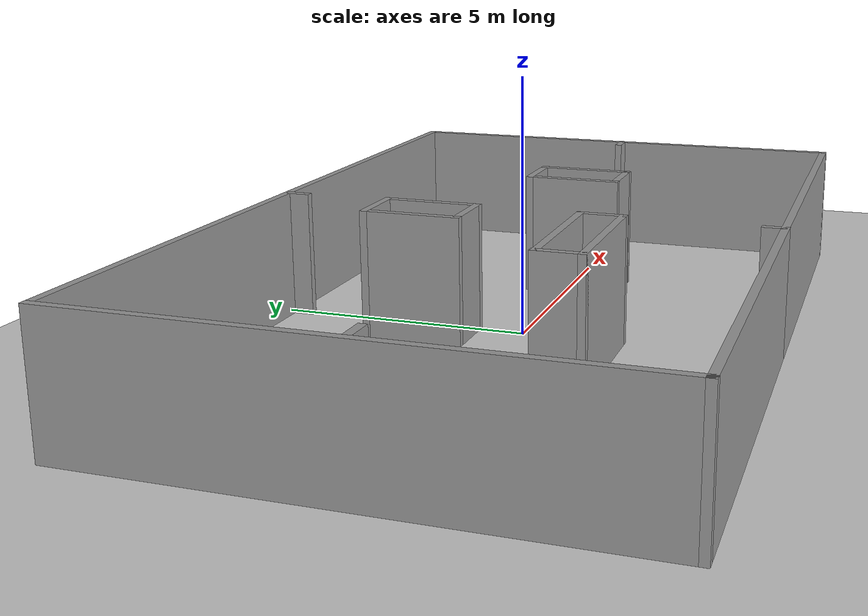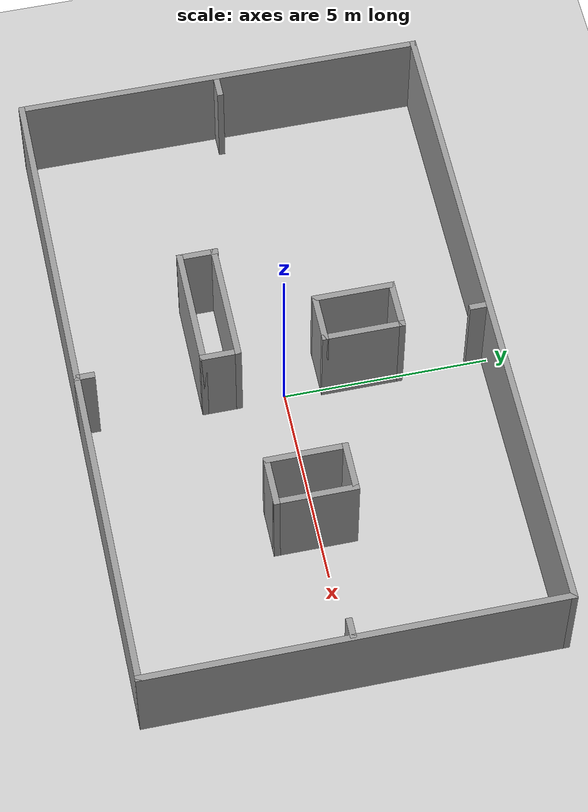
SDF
<sdf version="1.6">
 <world name="default">
  <light name="sun" type="directional">
   <pose>0 0 10 0 -0 0</pose>
   <diffuse>0.8 0.8 0.8 1</diffuse>
   <specular>0.2 0.2 0.2 1</specular>
   <attenuation>
    <range>1000</range>
    <constant>0.9</constant>
    <linear>0.01</linear>
    <quadratic>0.001</quadratic>
   </attenuation>
   <direction>-0.5 0.1 -0.9</direction>
  </light>
  <model name="ground_plane">
   <static>1</static>
   <link name="link">
    <collision name="collision">
     <geometry><plane><normal>0 0 1</normal><size>100 100</size></plane></geometry>
     <surface><friction><ode><mu>100</mu><mu2>50</mu2></ode></friction></surface>
    </collision>
    <visual name="visual">
     <cast_shadows>0</cast_shadows>
     <geometry><plane><normal>0 0 1</normal><size>100 100</size></plane></geometry>
     <material>
      <script><uri>file://media/materials/scripts/gazebo.material</uri><name>Gazebo/Grey</name></script>
     </material>
    </visual>
   </link>
  </model>
  <gravity>0 0 -9.8</gravity>
  <magnetic_field>6e-06 2.3e-05 -4.2e-05</magnetic_field>
  <atmosphere type="adiabatic"/>
  <physics name="default_physics" default="0" type="ode">
   <max_step_size>0.001</max_step_size>
   <real_time_factor>1</real_time_factor>
   <real_time_update_rate>1000</real_time_update_rate>
  </physics>
  <scene><ambient>0.4 0.4 0.4 1</ambient><background>0.7 0.7 0.7 1</background><shadows>1</shadows></scene>
  <spherical_coordinates>
   <surface_model>EARTH_WGS84</surface_model>
   <latitude_deg>0</latitude_deg>
   <longitude_deg>0</longitude_deg>
   <elevation>0</elevation>
   <heading_deg>0</heading_deg>
  </spherical_coordinates>
  <model name="playground_16_10">
   <pose>-0.042868 0.010242 0 0 -0 0</pose>
   <link name="Wall_16">
    <collision name="Wall_16_Collision">
     <geometry><box><size>8 0.15 2.5</size></box></geometry>
     <pose>0 0 1.25 0 -0 0</pose>
    </collision>
    <visual name="Wall_16_Visual">
     <pose>0 0 1.25 0 -0 0</pose>
     <geometry><box><size>8 0.15 2.5</size></box></geometry>
     <material>
      <script><uri>file://media/materials/scripts/gazebo.material</uri><name>Gazebo/Grey</name></script>
      <ambient>1 1 1 1</ambient>
     </material>
     <meta><layer>0</layer></meta>
    </visual>
    <pose>-3.925 -4.925 0 0 -0 3.14159</pose>
   </link>
   <link name="Wall_17">
    <collision name="Wall_17_Collision">
     <geometry><box><size>10 0.15 2.5</size></box></geometry>
     <pose>0 0 1.25 0 -0 0</pose>
    </collision>
    <visual name="Wall_17_Visual">
     <pose>0 0 1.25 0 -0 0</pose>
     <geometry><box><size>10 0.15 2.5</size></box></geometry>
     <material>
      <script><uri>file://media/materials/scripts/gazebo.material</uri><name>Gazebo/Grey</name></script>
      <ambient>1 1 1 1</ambient>
     </material>
     <meta><layer>0</layer></meta>
    </visual>
    <pose>-7.85 0 0 0 -0 1.5708</pose>
   </link>
   <link name="Wall_18">
    <collision name="Wall_18_Collision">
     <geometry><box><size>15.85 0.15 2.5</size></box></geometry>
     <pose>0 0 1.25 0 -0 0</pose>
    </collision>
    <visual name="Wall_18_Visual">
     <pose>0 0 1.25 0 -0 0</pose>
     <geometry><box><size>15.85 0.15 2.5</size></box></geometry>
     <material>
      <script><uri>file://media/materials/scripts/gazebo.material</uri><name>Gazebo/Grey</name></script>
      <ambient>1 1 1 1</ambient>
     </material>
     <meta><layer>0</layer></meta>
    </visual>
    <pose>0 4.925 0 0 -0 0</pose>
   </link>
   <link name="Wall_23">
    <collision name="Wall_23_Collision">
     <geometry><box><size>0.5 0.15 2.5</size></box></geometry>
     <pose>0 0 1.25 0 -0 0</pose>
    </collision>
    <visual name="Wall_23_Visual">
     <pose>0 0 1.25 0 -0 0</pose>
     <geometry><box><size>0.5 0.15 2.5</size></box></geometry>
     <material>
      <script><uri>file://media/materials/scripts/gazebo.material</uri><name>Gazebo/Grey</name></script>
      <ambient>1 1 1 1</ambient>
     </material>
     <meta><layer>0</layer></meta>
    </visual>
    <pose>0 -4.75 0 0 -0 1.5708</pose>
   </link>
   <link name="Wall_25">
    <collision name="Wall_25_Collision">
     <geometry><box><size>0.5 0.15 2.5</size></box></geometry>
     <pose>0 0 1.25 0 -0 0</pose>
    </collision>
    <visual name="Wall_25_Visual">
     <pose>0 0 1.25 0 -0 0</pose>
     <geometry><box><size>0.5 0.15 2.5</size></box></geometry>
     <material>
      <script><uri>file://media/materials/scripts/gazebo.material</uri><name>Gazebo/Grey</name></script>
      <ambient>1 1 1 1</ambient>
     </material>
     <meta><layer>0</layer></meta>
    </visual>
    <pose>0 4.7 0 0 -0 1.5708</pose>
   </link>
   <link name="Wall_28">
    <collision name="Wall_28_Collision">
     <geometry><box><size>0.5 0.15 2.5</size></box></geometry>
     <pose>0 0 1.25 0 -0 0</pose>
    </collision>
    <visual name="Wall_28_Visual">
     <pose>0 0 1.25 0 -0 0</pose>
     <geometry><box><size>0.5 0.15 2.5</size></box></geometry>
     <material>
      <script><uri>file://media/materials/scripts/gazebo.material</uri><name>Gazebo/Grey</name></script>
      <ambient>1 1 1 1</ambient>
     </material>
     <meta><layer>0</layer></meta>
    </visual>
    <pose>7.61369 -0.100793 0 0 -0 0</pose>
   </link>
   <link name="Wall_31">
    <collision name="Wall_31_Collision">
     <geometry><box><size>0.5 0.15 2.5</size></box></geometry>
     <pose>0 0 1.25 0 -0 0</pose>
    </collision>
    <visual name="Wall_31_Visual">
     <pose>0 0 1.25 0 -0 0</pose>
     <geometry><box><size>0.5 0.15 2.5</size></box></geometry>
     <material>
      <script><uri>file://media/materials/scripts/gazebo.material</uri><name>Gazebo/Grey</name></script>
      <ambient>1 1 1 1</ambient>
     </material>
     <meta><layer>0</layer></meta>
    </visual>
    <pose>-7.525 -0.075 0 0 -0 3.14159</pose>
   </link>
   <link name="Wall_5">
    <collision name="Wall_5_Collision">
     <geometry><box><size>8 0.15 2.5</size></box></geometry>
     <pose>0 0 1.25 0 -0 0</pose>
    </collision>
    <visual name="Wall_5_Visual">
     <pose>0 0 1.25 0 -0 0</pose>
     <geometry><box><size>8 0.15 2.5</size></box></geometry>
     <material>
      <script><uri>file://media/materials/scripts/gazebo.material</uri><name>Gazebo/Grey</name></script>
      <ambient>1 1 1 1</ambient>
     </material>
     <meta><layer>0</layer></meta>
    </visual>
    <pose>3.925 -4.925 0 0 -0 0</pose>
   </link>
   <link name="Wall_8">
    <collision name="Wall_8_Collision">
     <geometry><box><size>10 0.15 2.5</size></box></geometry>
     <pose>0 0 1.25 0 -0 0</pose>
    </collision>
    <visual name="Wall_8_Visual">
     <pose>0 0 1.25 0 -0 0</pose>
     <geometry><box><size>10 0.15 2.5</size></box></geometry>
     <material>
      <script><uri>file://media/materials/scripts/gazebo.material</uri><name>Gazebo/Grey</name></script>
      <ambient>1 1 1 1</ambient>
     </material>
     <meta><layer>0</layer></meta>
    </visual>
    <pose>7.85 0 0 0 -0 1.5708</pose>
   </link>
   <static>1</static>
  </model>
  <model name="obstacle">
   <pose>0.644607 0.431374 0 0 -0 0</pose>
   <link name="Wall_12">
    <collision name="Wall_12_Collision">
     <geometry><box><size>2 0.15 2.5</size></box></geometry>
     <pose>0 0 1.25 0 -0 0</pose>
    </collision>
    <visual name="Wall_12_Visual">
     <pose>0 0 1.25 0 -0 0</pose>
     <geometry><box><size>2 0.15 2.5</size></box></geometry>
     <material>
      <script><uri>file://media/materials/scripts/gazebo.material</uri><name>Gazebo/Grey</name></script>
      <ambient>1 1 1 1</ambient>
     </material>
     <meta><layer>0</layer></meta>
    </visual>
    <pose>-1.68348 1.45047 0 0 0 -1.5708</pose>
   </link>
   <link name="Wall_14">
    <collision name="Wall_14_Collision">
     <geometry><box><size>1.25 0.15 2.5</size></box></geometry>
     <pose>0 0 1.25 0 -0 0</pose>
    </collision>
    <visual name="Wall_14_Visual">
     <pose>0 0 1.25 0 -0 0</pose>
     <geometry><box><size>1.25 0.15 2.5</size></box></geometry>
     <material>
      <script><uri>file://media/materials/scripts/gazebo.material</uri><name>Gazebo/Grey</name></script>
      <ambient>1 1 1 1</ambient>
     </material>
     <meta><layer>0</layer></meta>
    </visual>
    <pose>-1.13348 0.525473 0 0 -0 0</pose>
   </link>
   <link name="Wall_15">
    <collision name="Wall_15_Collision">
     <geometry><box><size>2 0.15 2.5</size></box></geometry>
     <pose>0 0 1.25 0 -0 0</pose>
    </collision>
    <visual name="Wall_15_Visual">
     <pose>0 0 1.25 0 -0 0</pose>
     <geometry><box><size>2 0.15 2.5</size></box></geometry>
     <material>
      <script><uri>file://media/materials/scripts/gazebo.material</uri><name>Gazebo/Grey</name></script>
      <ambient>1 1 1 1</ambient>
     </material>
     <meta><layer>0</layer></meta>
    </visual>
    <pose>-0.583482 1.45047 0 0 -0 1.5708</pose>
   </link>
   <link name="Wall_16">
    <collision name="Wall_16_Collision">
     <geometry><box><size>1.25 0.15 2.5</size></box></geometry>
     <pose>0 0 1.25 0 -0 0</pose>
    </collision>
    <visual name="Wall_16_Visual">
     <pose>0 0 1.25 0 -0 0</pose>
     <geometry><box><size>1.25 0.15 2.5</size></box></geometry>
     <material>
      <script><uri>file://media/materials/scripts/gazebo.material</uri><name>Gazebo/Grey</name></script>
      <ambient>1 1 1 1</ambient>
     </material>
     <meta><layer>0</layer></meta>
    </visual>
    <pose>-1.13348 2.37547 0 0 -0 3.14159</pose>
   </link>
   <link name="Wall_18">
    <collision name="Wall_18_Collision">
     <geometry><box><size>2 0.15 2.5</size></box></geometry>
     <pose>0 0 1.25 0 -0 0</pose>
    </collision>
    <visual name="Wall_18_Visual">
     <pose>0 0 1.25 0 -0 0</pose>
     <geometry><box><size>2 0.15 2.5</size></box></geometry>
     <material>
      <script><uri>file://media/materials/scripts/gazebo.material</uri><name>Gazebo/Grey</name></script>
      <ambient>1 1 1 1</ambient>
     </material>
     <meta><layer>0</layer></meta>
    </visual>
    <pose>2.37244 -0.561462 0 0 0 -1.5708</pose>
   </link>
   <link name="Wall_20">
    <collision name="Wall_20_Collision">
     <geometry><box><size>1.25 0.15 2.5</size></box></geometry>
     <pose>0 0 1.25 0 -0 0</pose>
    </collision>
    <visual name="Wall_20_Visual">
     <pose>0 0 1.25 0 -0 0</pose>
     <geometry><box><size>1.25 0.15 2.5</size></box></geometry>
     <material>
      <script><uri>file://media/materials/scripts/gazebo.material</uri><name>Gazebo/Grey</name></script>
      <ambient>1 1 1 1</ambient>
     </material>
     <meta><layer>0</layer></meta>
    </visual>
    <pose>2.92244 0.363538 0 0 -0 0</pose>
   </link>
   <link name="Wall_21">
    <collision name="Wall_21_Collision">
     <geometry><box><size>2 0.15 2.5</size></box></geometry>
     <pose>0 0 1.25 0 -0 0</pose>
    </collision>
    <visual name="Wall_21_Visual">
     <pose>0 0 1.25 0 -0 0</pose>
     <geometry><box><size>2 0.15 2.5</size></box></geometry>
     <material>
      <script><uri>file://media/materials/scripts/gazebo.material</uri><name>Gazebo/Grey</name></script>
      <ambient>1 1 1 1</ambient>
     </material>
     <meta><layer>0</layer></meta>
    </visual>
    <pose>3.47244 -0.561462 0 0 0 -1.5708</pose>
   </link>
   <link name="Wall_22">
    <collision name="Wall_22_Collision">
     <geometry><box><size>1.25 0.15 2.5</size></box></geometry>
     <pose>0 0 1.25 0 -0 0</pose>
    </collision>
    <visual name="Wall_22_Visual">
     <pose>0 0 1.25 0 -0 0</pose>
     <geometry><box><size>1.25 0.15 2.5</size></box></geometry>
     <material>
      <script><uri>file://media/materials/scripts/gazebo.material</uri><name>Gazebo/Grey</name></script>
      <ambient>1 1 1 1</ambient>
     </material>
     <meta><layer>0</layer></meta>
    </visual>
    <pose>2.92244 -1.48646 0 0 -0 3.14159</pose>
   </link>
   <link name="Wall_3">
    <collision name="Wall_3_Collision">
     <geometry><box><size>1 0.15 2.5</size></box></geometry>
     <pose>0 0 1.25 0 -0 0</pose>
    </collision>
    <visual name="Wall_3_Visual">
     <pose>0 0 1.25 0 -0 0</pose>
     <geometry><box><size>1 0.15 2.5</size></box></geometry>
     <material>
      <script><uri>file://media/materials/scripts/gazebo.material</uri><name>Gazebo/Grey</name></script>
      <ambient>1 1 1 1</ambient>
     </material>
     <meta><layer>0</layer></meta>
    </visual>
    <pose>-3.47244 -1.95047 0 0 -0 1.5708</pose>
   </link>
   <link name="Wall_4">
    <collision name="Wall_4_Collision">
     <geometry><box><size>3 0.15 2.5</size></box></geometry>
     <pose>0 0 1.25 0 -0 0</pose>
    </collision>
    <visual name="Wall_4_Visual">
     <pose>0 0 1.25 0 -0 0</pose>
     <geometry><box><size>3 0.15 2.5</size></box></geometry>
     <material>
      <script><uri>file://media/materials/scripts/gazebo.material</uri><name>Gazebo/Grey</name></script>
      <ambient>1 1 1 1</ambient>
     </material>
     <meta><layer>0</layer></meta>
    </visual>
    <pose>-2.04744 -1.54834 0 0 -0 0</pose>
   </link>
   <link name="Wall_8">
    <collision name="Wall_8_Collision">
     <geometry><box><size>3 0.15 2.5</size></box></geometry>
     <pose>0 0 1.25 0 -0 0</pose>
    </collision>
    <visual name="Wall_8_Visual">
     <pose>0 0 1.25 0 -0 0</pose>
     <geometry><box><size>3 0.15 2.5</size></box></geometry>
     <material>
      <script><uri>file://media/materials/scripts/gazebo.material</uri><name>Gazebo/Grey</name></script>
      <ambient>1 1 1 1</ambient>
     </material>
     <meta><layer>0</layer></meta>
    </visual>
    <pose>-2.04744 -2.37547 0 0 -0 0</pose>
   </link>
   <link name="Wall_9">
    <collision name="Wall_9_Collision">
     <geometry><box><size>0.97713 0.15 2.5</size></box></geometry>
     <pose>0 0 1.25 0 -0 0</pose>
    </collision>
    <visual name="Wall_9_Visual">
     <pose>0 0 1.25 0 -0 0</pose>
     <geometry><box><size>0.97713 0.15 2.5</size></box></geometry>
     <material>
      <script><uri>file://media/materials/scripts/gazebo.material</uri><name>Gazebo/Grey</name></script>
      <ambient>1 1 1 1</ambient>
     </material>
     <meta><layer>0</layer></meta>
    </visual>
    <pose>-0.622442 -1.96191 0 0 -0 1.5708</pose>
   </link>
   <static>1</static>
  </model>
 </world>
</sdf>
